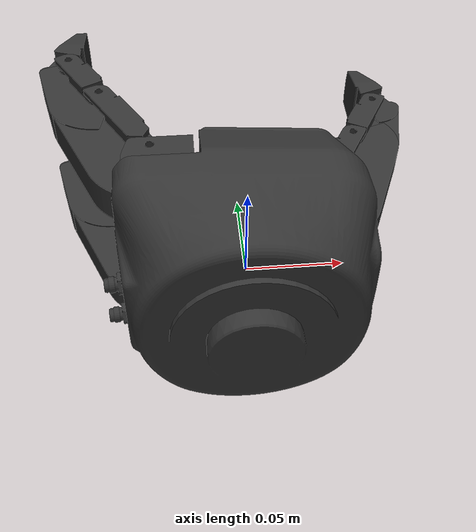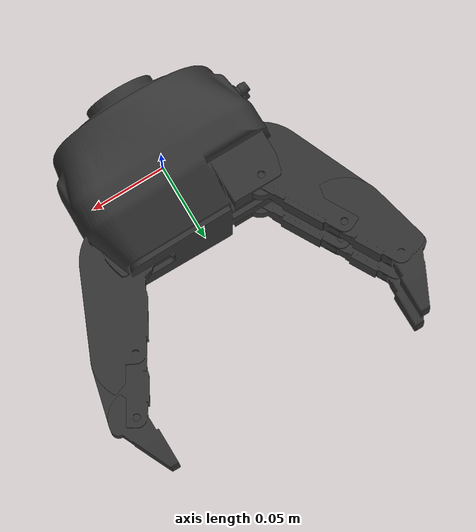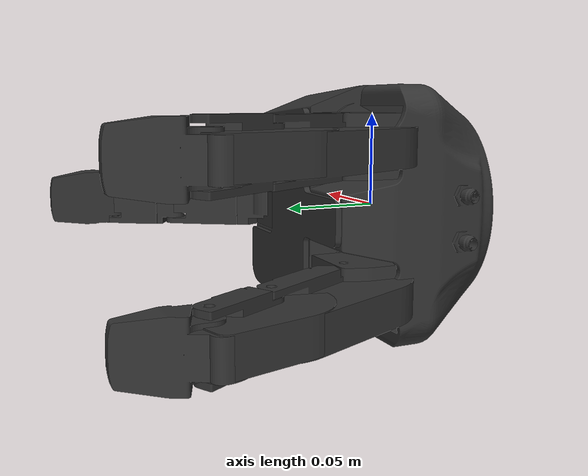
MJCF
<mujoco model="robotiq_3f_gripper">
  <compiler angle="radian" meshdir="assets/"/>

  <default>
    <default class="robotiq">
      <joint damping="2.0" armature="0.1" frictionloss="0.05"
             limited="true" solreflimit="0.005 1" solimplimit="0.99 0.999 0.001"/>
      <position kp="10" kv="0.5" forcerange="-20 20"/>
      <geom solref="0.01 1" solimp="0.95 0.99 0.001" friction="1.0 0.05 0.001"/>
      <default class="robotiq_visual">
        <geom contype="0" conaffinity="0" group="2" density="0" rgba="0.2 0.2 0.2 1"/>
      </default>
      <default class="robotiq_collision">
        <geom group="3" rgba="0.5 0.5 0.5 0.3"/>
      </default>
      <default class="robotiq_fingertip">
        <geom group="3" rgba="0.8 0.3 0.3 0.5" friction="2.0 0.1 0.001"/>
      </default>
    </default>
  </default>

    <asset>
        <mesh name="rq_link_0" file="robotiq/robotiq-3f-gripper_articulated/visual/link_0.obj"/>
        <mesh name="rq_link_1" file="robotiq/robotiq-3f-gripper_articulated/visual/link_1.obj"/>
        <mesh name="rq_link_2" file="robotiq/robotiq-3f-gripper_articulated/visual/link_2.obj"/>
        <mesh name="rq_link_3" file="robotiq/robotiq-3f-gripper_articulated/visual/link_3.obj"/>
        <mesh name="rq_palm"   file="robotiq/robotiq-3f-gripper_articulated/visual/palm.obj"/>
    </asset>

  <worldbody>
    <body name="palm" childclass="robotiq">
    <freejoint name="palm_free"/>
      <inertial pos="0 0 0" mass="1.3" diaginertia="1.5e-3 1.5e-3 1.5e-3"/>
      <geom class="robotiq_visual" type="mesh" mesh="rq_palm"/>

      <body name="finger_1_link_0" pos="-0.0455 0.0214 0.036" quat="-2.59838e-06 0.706825 0.707388 2.59631e-06">
        <inertial pos="0.02 0 0" mass="0.05" diaginertia="3.3e-6 3.3e-6 3.3e-6"/>
        <joint name="palm_finger_1_joint" axis="0 1 0" range="-0.1784 0.192"/>
        <geom class="robotiq_visual" pos="0.02 0 0" type="mesh" mesh="rq_link_0"/>
        <body name="finger_1_link_1" pos="0.02 0 0">
          <inertial pos="0.025 -0.014 0" mass="0.15" diaginertia="1.0e-5 3.6e-5 3.6e-5"/>
          <joint name="finger_1_joint_1" axis="0 0 1" range="0.0495 1.2218"/>
          <geom class="robotiq_visual" pos="0.05 -0.028 0" quat="0.96639 0 0 -0.257081" type="mesh" mesh="rq_link_1"/>
          <body name="finger_1_link_2" pos="0.05 -0.028 0" quat="0.96639 0 0 -0.257081">
            <inertial pos="0.02 0 0.0075" mass="0.15" diaginertia="1.0e-5 3.6e-5 3.6e-5"/>
            <joint name="finger_1_joint_2" axis="0 0 1" range="0 1.5708"/>
            <geom class="robotiq_visual" pos="0.039 0 0.0075" type="mesh" mesh="rq_link_2"/>
            <body name="finger_1_link_3" pos="0.039 0 0">
              <inertial pos="0.01 0 0" mass="0.05" diaginertia="3.3e-6 3.3e-6 3.3e-6"/>
              <joint name="finger_1_joint_3" axis="0 0 1" range="-1.2217 -0.0523"/>
              <geom class="robotiq_visual" quat="0.96639 0 0 0.257081" type="mesh" mesh="rq_link_3"/>
              <geom name="f1_tip" class="robotiq_fingertip" type="capsule" fromto="0 0 0  0.03 0 0" size="0.008"/>
            </body>
          </body>
        </body>
      </body>

      <body name="finger_2_link_0" pos="-0.0455 0.0214 -0.036" quat="-2.59838e-06 0.706825 0.707388 2.59631e-06">
        <inertial pos="0.02 0 0" mass="0.05" diaginertia="3.3e-6 3.3e-6 3.3e-6"/>
        <joint name="palm_finger_2_joint" axis="0 1 0" range="-0.192 0.1784"/>
        <geom class="robotiq_visual" pos="0.02 0 0" type="mesh" mesh="rq_link_0"/>
        <body name="finger_2_link_1" pos="0.02 0 0">
          <inertial pos="0.025 -0.014 0" mass="0.15" diaginertia="1.0e-5 3.6e-5 3.6e-5"/>
          <joint name="finger_2_joint_1" axis="0 0 1" range="0.0495 1.2218"/>
          <geom class="robotiq_visual" pos="0.05 -0.028 0" quat="0.96639 0 0 -0.257081" type="mesh" mesh="rq_link_1"/>
          <body name="finger_2_link_2" pos="0.05 -0.028 0" quat="0.96639 0 0 -0.257081">
            <inertial pos="0.02 0 0.0075" mass="0.15" diaginertia="1.0e-5 3.6e-5 3.6e-5"/>
            <joint name="finger_2_joint_2" axis="0 0 1" range="0 1.5708"/>
            <geom class="robotiq_visual" pos="0.039 0 0.0075" type="mesh" mesh="rq_link_2"/>
            <body name="finger_2_link_3" pos="0.039 0 0">
              <inertial pos="0.01 0 0" mass="0.05" diaginertia="3.3e-6 3.3e-6 3.3e-6"/>
              <joint name="finger_2_joint_3" axis="0 0 1" range="-1.2217 -0.0523"/>
              <geom class="robotiq_visual" quat="0.96639 0 0 0.257081" type="mesh" mesh="rq_link_3"/>
              <geom name="f2_tip" class="robotiq_fingertip" type="capsule" fromto="0 0 0  0.03 0 0" size="0.008"/>
            </body>
          </body>
        </body>
      </body>

      <body name="finger_middle_link_0" pos="0.0455 0.0214 0" quat="0.707388 0 0 0.706825">
        <inertial pos="0.02 0 0" mass="0.05" diaginertia="3.3e-6 3.3e-6 3.3e-6"/>
        <geom class="robotiq_visual" pos="0.02 0 0" type="mesh" mesh="rq_link_0"/>
        <body name="finger_middle_link_1" pos="0.02 0 0">
          <inertial pos="0.025 -0.014 0" mass="0.15" diaginertia="1.0e-5 3.6e-5 3.6e-5"/>
          <joint name="finger_middle_joint_1" axis="0 0 1" range="0.0495 1.2218"/>
          <geom class="robotiq_visual" pos="0.05 -0.028 0" quat="0.96639 0 0 -0.257081" type="mesh" mesh="rq_link_1"/>
          <body name="finger_middle_link_2" pos="0.05 -0.028 0" quat="0.96639 0 0 -0.257081">
            <inertial pos="0.02 0 0.0075" mass="0.15" diaginertia="1.0e-5 3.6e-5 3.6e-5"/>
            <joint name="finger_middle_joint_2" axis="0 0 1" range="0 1.5708"/>
            <geom class="robotiq_visual" pos="0.039 0 0.0075" type="mesh" mesh="rq_link_2"/>
            <body name="finger_middle_link_3" pos="0.039 0 0">
              <inertial pos="0.01 0 0" mass="0.05" diaginertia="3.3e-6 3.3e-6 3.3e-6"/>
              <joint name="finger_middle_joint_3" axis="0 0 1" range="-1.2217 -0.0523"/>
              <geom class="robotiq_visual" quat="0.96639 0 0 0.257081" type="mesh" mesh="rq_link_3"/>
              <geom name="fm_tip" class="robotiq_fingertip" type="capsule" fromto="0 0 0  0.03 0 0" size="0.008"/>
            </body>
          </body>
        </body>
      </body>
    </body>
  </worldbody>

  <actuator>
    <position name="f1_j1" class="robotiq" joint="finger_1_joint_1"      ctrlrange="0.05 1.22"/>
    <position name="f1_j2" class="robotiq" joint="finger_1_joint_2"      ctrlrange="0.0 1.57"/>
    <position name="f1_j3" class="robotiq" joint="finger_1_joint_3"      ctrlrange="-1.22 -0.05"/>
    <position name="f2_j1" class="robotiq" joint="finger_2_joint_1"      ctrlrange="0.05 1.22"/>
    <position name="f2_j2" class="robotiq" joint="finger_2_joint_2"      ctrlrange="0.0 1.57"/>
    <position name="f2_j3" class="robotiq" joint="finger_2_joint_3"      ctrlrange="-1.22 -0.05"/>
    <position name="fm_j1" class="robotiq" joint="finger_middle_joint_1" ctrlrange="0.05 1.22"/>
    <position name="fm_j2" class="robotiq" joint="finger_middle_joint_2" ctrlrange="0.0 1.57"/>
    <position name="fm_j3" class="robotiq" joint="finger_middle_joint_3" ctrlrange="-1.22 -0.05"/>
    <position name="pf1"   class="robotiq" joint="palm_finger_1_joint"   ctrlrange="-0.18 0.19"/>
    <position name="pf2"   class="robotiq" joint="palm_finger_2_joint"   ctrlrange="-0.19 0.18"/>
  </actuator>
</mujoco>
